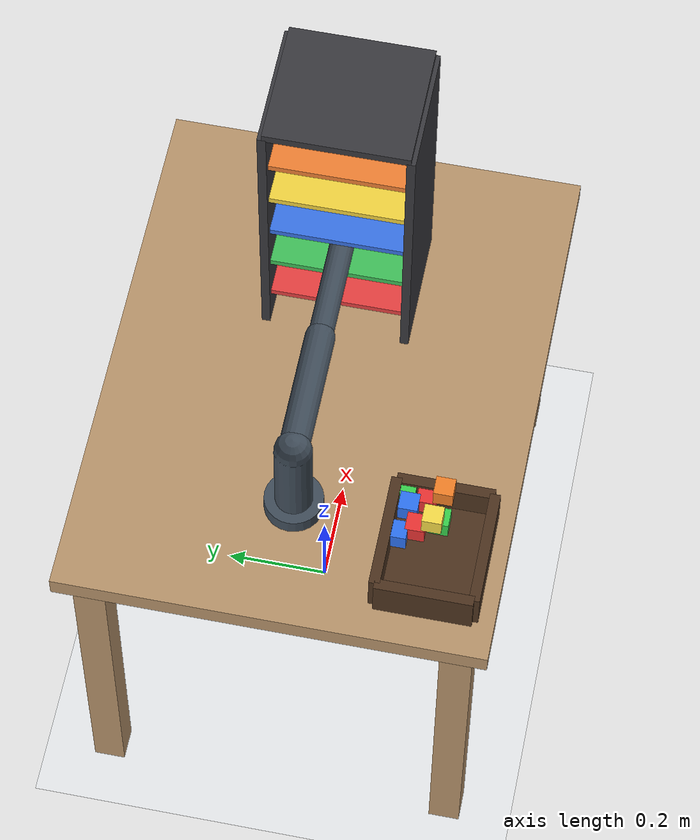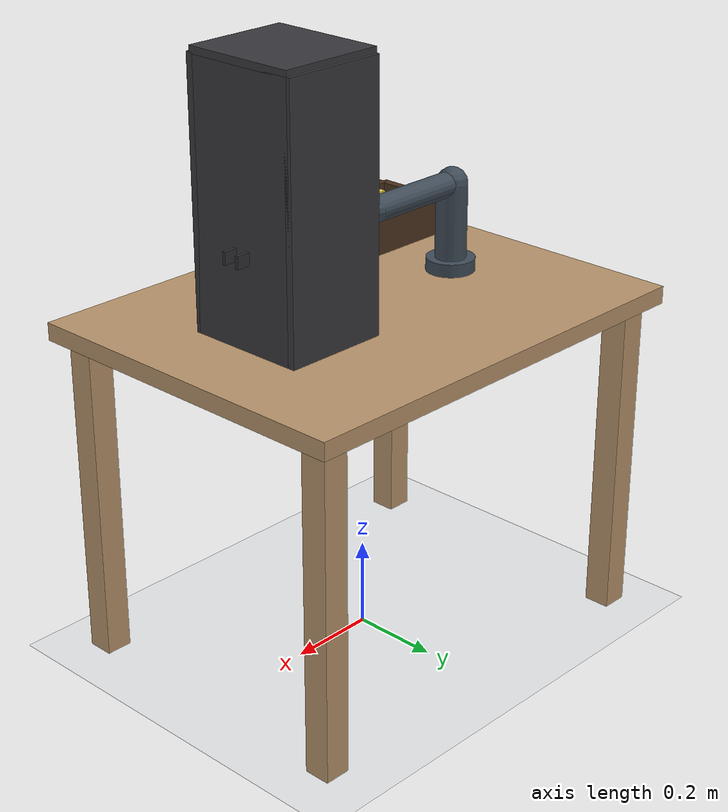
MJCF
<mujoco model="mini_sorting_scene">
  <compiler angle="degree" autolimits="true"/>
  <option gravity="0 0 -9.81" integrator="RK4" timestep="0.002"/>

  <visual>
    <headlight ambient="0.35 0.35 0.35" diffuse="0.7 0.7 0.7" specular="0.15 0.15 0.15"/>
    <rgba haze="0.95 0.97 1.0 1"/>
  </visual>

  <asset>
    <texture name="sky_bg" type="skybox" builtin="gradient" width="512" height="512"
             rgb1="0.86 0.92 0.98" rgb2="0.98 0.99 1.0"/>
    <material name="mat_ground" rgba="0.90 0.91 0.92 1" reflectance="0.02"/>

    <material name="mat_table" rgba="0.72 0.58 0.42 1"/>
    <material name="mat_robot" rgba="0.25 0.3 0.35 1"/>
    <material name="mat_gripper" rgba="0.18 0.18 0.2 1"/>
    <material name="mat_camera" rgba="0.08 0.08 0.09 1"/>
    <material name="mat_lens" rgba="0.12 0.24 0.32 1"/>
    <material name="mat_basket" rgba="0.3 0.2 0.12 1"/>
    <material name="mat_cabinet" rgba="0.22 0.22 0.24 1"/>

    <material name="shelf_red" rgba="0.9 0.25 0.25 1"/>
    <material name="shelf_green" rgba="0.25 0.75 0.35 1"/>
    <material name="shelf_blue" rgba="0.22 0.45 0.9 1"/>
    <material name="shelf_yellow" rgba="0.95 0.83 0.25 1"/>
    <material name="shelf_orange" rgba="0.94 0.5 0.2 1"/>
    <material name="shelf_purple" rgba="0.62 0.36 0.86 1"/>

    <material name="cube_red" rgba="0.92 0.2 0.2 1"/>
    <material name="cube_green" rgba="0.22 0.82 0.3 1"/>
    <material name="cube_blue" rgba="0.18 0.45 0.95 1"/>
    <material name="cube_yellow" rgba="0.96 0.86 0.28 1"/>
    <material name="cube_orange" rgba="0.95 0.5 0.15 1"/>
  </asset>

  <default>
    <joint damping="2.2" armature="0.02"/>
    <geom condim="4" friction="0.9 0.05 0.01" solref="0.01 1" solimp="0.9 0.97 0.001"/>
    <motor ctrllimited="true" ctrlrange="-1 1"/>
  </default>

  <worldbody>
    <light name="key_light" pos="0.2 -0.1 2.2" dir="0 0 -1" directional="true" castshadow="true"/>

    <geom name="floor" type="plane" size="4 4 0.1" material="mat_ground"/>

    <body name="table" pos="0 0 0">
      <geom name="table_top" type="box" pos="0 0 0.76" size="0.52 0.40 0.02" material="mat_table"/>
      <geom type="box" pos="0.46 0.34 0.38" size="0.03 0.03 0.38" material="mat_table"/>
      <geom type="box" pos="0.46 -0.34 0.38" size="0.03 0.03 0.38" material="mat_table"/>
      <geom type="box" pos="-0.46 0.34 0.38" size="0.03 0.03 0.38" material="mat_table"/>
      <geom type="box" pos="-0.46 -0.34 0.38" size="0.03 0.03 0.38" material="mat_table"/>

      <body name="robot_base" pos="-0.28 0.0 0.78">
        <geom type="cylinder" size="0.055 0.03" material="mat_robot"/>

        <body name="shoulder_yaw" pos="0 0 0.03">
          <joint name="j1" type="hinge" axis="0 0 1" range="-180 180"/>
          <geom type="capsule" fromto="0 0 0 0 0 0.17" size="0.035" material="mat_robot"/>

          <body name="shoulder_pitch" pos="0 0 0.17">
            <joint name="j2" type="hinge" axis="0 1 0" range="-135 135"/>
            <geom type="capsule" fromto="0 0 0 0.24 0 0" size="0.028" material="mat_robot"/>

            <body name="elbow_pitch" pos="0.24 0 0">
              <joint name="j3" type="hinge" axis="0 1 0" range="-145 145"/>
              <geom type="capsule" fromto="0 0 0 0.21 0 0" size="0.023" material="mat_robot"/>

              <body name="wrist_pitch" pos="0.21 0 0">
                <joint name="j4" type="hinge" axis="0 1 0" range="-160 160"/>
                <geom type="capsule" fromto="0 0 0 0.08 0 0" size="0.02" material="mat_robot"/>

                <body name="wrist_roll" pos="0.08 0 0">
                  <joint name="j5" type="hinge" axis="1 0 0" range="-180 180"/>
                  <geom type="sphere" size="0.03" material="mat_robot"/>
                  <geom type="capsule" fromto="0 0 0 0 0.06 0" size="0.004" material="shelf_orange"/>

                  <body name="ee" pos="0.04 0 0">
                    <geom type="box" size="0.026 0.02 0.016" material="mat_gripper"/>
                    <geom type="box" pos="0.014 0.013 0" size="0.012 0.0035 0.014" material="mat_gripper"/>
                    <geom type="box" pos="0.014 -0.013 0" size="0.012 0.0035 0.014" material="mat_gripper"/>
                    <geom type="box" pos="0.018 0.016 0" size="0.006 0.002 0.011" material="mat_gripper"/>
                    <geom type="box" pos="0.018 -0.016 0" size="0.006 0.002 0.011" material="mat_gripper"/>
                    <geom type="box" pos="0.01 0 0.025" size="0.0028 0.0028 0.011" material="mat_camera"/>
                    <body name="grip_cam_mount" pos="0.012 0 0.038">
                      <geom type="box" pos="-0.002 0 0" size="0.004 0.006 0.005" material="mat_camera"/>
                      <geom type="box" pos="0.006 0 0.010" size="0.008 0.011 0.006" euler="0 24 0" material="mat_camera"/>
                      <geom type="capsule" fromto="0.003 0 0.010 -0.006 0 0.014" size="0.0022" material="mat_lens"/>
                      <camera name="grip_cam" pos="0.002 0 0.010" zaxis="-1 0 0.42" fovy="72"/>
                    </body>

                    <body name="left_finger" pos="0.035 0.018 0">
                      <joint name="finger_left" type="hinge" axis="0 0 -1" range="-45 30" damping="0.35"/>
                      <geom type="box" pos="0.024 0 0" size="0.022 0.0038 0.014" material="mat_gripper"/>
                    </body>

                    <body name="right_finger" pos="0.035 -0.018 0">
                      <joint name="finger_right" type="hinge" axis="0 0 1" range="-45 30" damping="0.35"/>
                      <geom type="box" pos="0.024 0 0" size="0.022 0.0038 0.014" material="mat_gripper"/>
                    </body>
                  </body>
                </body>
              </body>
            </body>
          </body>
        </body>
      </body>

      <body name="basket" pos="-0.34 -0.27 0.78">
        <geom type="box" pos="0 0 0.01" size="0.11 0.09 0.01" material="mat_basket"/>
        <geom type="box" pos="0.11 0 0.04" size="0.01 0.09 0.04" material="mat_basket"/>
        <geom type="box" pos="-0.11 0 0.04" size="0.01 0.09 0.04" material="mat_basket"/>
        <geom type="box" pos="0 0.09 0.04" size="0.11 0.01 0.04" material="mat_basket"/>
        <geom type="box" pos="0 -0.09 0.04" size="0.11 0.01 0.04" material="mat_basket"/>
      </body>

      <body name="cabinet" pos="0.22 0.0 0.78">
        <geom type="box" pos="0 0.132 0.29" size="0.12 0.008 0.29" material="mat_cabinet"/>
        <geom type="box" pos="0 -0.132 0.29" size="0.12 0.008 0.29" material="mat_cabinet"/>
        <geom type="box" pos="0.112 0 0.29" size="0.008 0.132 0.29" material="mat_cabinet"/>
        <geom type="box" pos="0 0 0.585" size="0.12 0.132 0.008" material="mat_cabinet"/>
        <geom type="box" pos="0 0 0.08" size="0.106 0.124 0.006" material="shelf_red"/>
        <geom type="box" pos="0 0 0.18" size="0.106 0.124 0.006" material="shelf_green"/>
        <geom type="box" pos="0 0 0.28" size="0.106 0.124 0.006" material="shelf_blue"/>
        <geom type="box" pos="0 0 0.38" size="0.106 0.124 0.006" material="shelf_yellow"/>
        <geom type="box" pos="0 0 0.48" size="0.106 0.124 0.006" material="shelf_orange"/>
        <geom type="box" pos="0.104 0 0.13" size="0.0025 0.122 0.044" material="shelf_red"/>
        <geom type="box" pos="0.104 0 0.23" size="0.0025 0.122 0.044" material="shelf_green"/>
        <geom type="box" pos="0.104 0 0.33" size="0.0025 0.122 0.044" material="shelf_blue"/>
        <geom type="box" pos="0.104 0 0.43" size="0.0025 0.122 0.044" material="shelf_yellow"/>
        <geom type="box" pos="0.104 0 0.53" size="0.0025 0.122 0.044" material="shelf_orange"/>
      </body>
    </body>

    <body name="cube_red_1" pos="-0.31 -0.23 0.835">
      <freejoint/>
      <geom type="box" size="0.018 0.018 0.018" material="cube_red"/>
    </body>
    <body name="cube_red_2" pos="-0.25 -0.24 0.835">
      <freejoint/>
      <geom type="box" size="0.018 0.018 0.018" material="cube_red"/>
    </body>
    <body name="cube_green_1" pos="-0.29 -0.27 0.835">
      <freejoint/>
      <geom type="box" size="0.018 0.018 0.018" material="cube_green"/>
    </body>
    <body name="cube_green_2" pos="-0.24 -0.2 0.835">
      <freejoint/>
      <geom type="box" size="0.018 0.018 0.018" material="cube_green"/>
    </body>
    <body name="cube_blue_1" pos="-0.33 -0.2 0.835">
      <freejoint/>
      <geom type="box" size="0.018 0.018 0.018" material="cube_blue"/>
    </body>
    <body name="cube_blue_2" pos="-0.27 -0.21 0.835">
      <freejoint/>
      <geom type="box" size="0.018 0.018 0.018" material="cube_blue"/>
    </body>
    <body name="cube_yellow_1" pos="-0.31 -0.26 0.875">
      <freejoint/>
      <geom type="box" size="0.018 0.018 0.018" material="cube_yellow"/>
    </body>
    <body name="cube_orange_1" pos="-0.25 -0.27 0.875">
      <freejoint/>
      <geom type="box" size="0.018 0.018 0.018" material="cube_orange"/>
    </body>

    <camera name="top_cam" pos="0.18 0 1.95" zaxis="-0.04 0 1" fovy="55"/>
  </worldbody>

  <actuator>
    <motor name="a_j1" joint="j1" gear="65"/>
    <motor name="a_j2" joint="j2" gear="75"/>
    <motor name="a_j3" joint="j3" gear="70"/>
    <motor name="a_j4" joint="j4" gear="50"/>
    <motor name="a_j5" joint="j5" gear="35"/>
    <position name="a_fl" joint="finger_left" kp="360" ctrlrange="-0.79 0.52" ctrllimited="true"/>
    <position name="a_fr" joint="finger_right" kp="360" ctrlrange="-0.79 0.52" ctrllimited="true"/>
  </actuator>
</mujoco>
